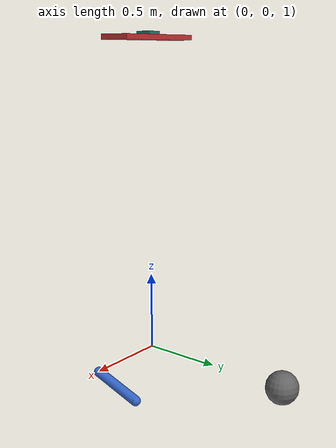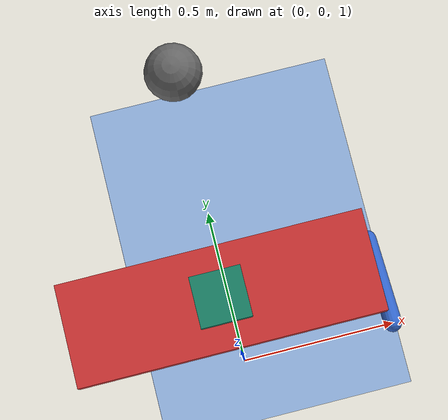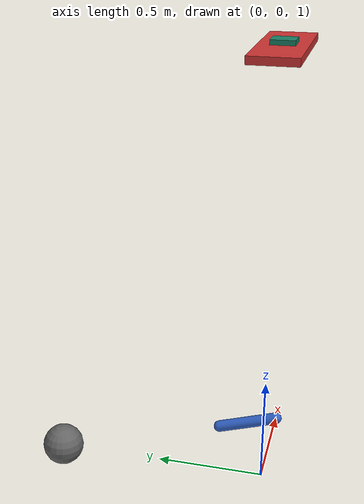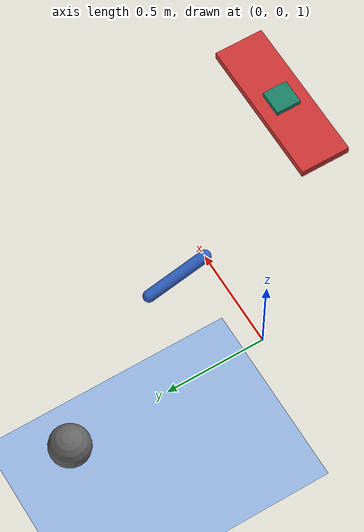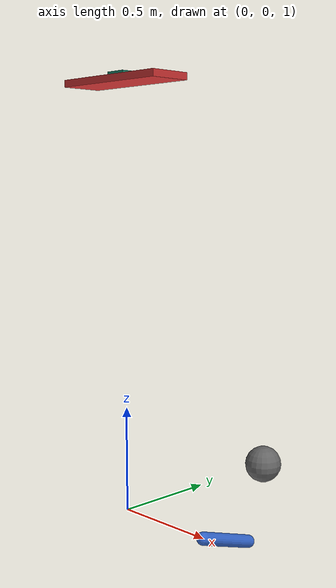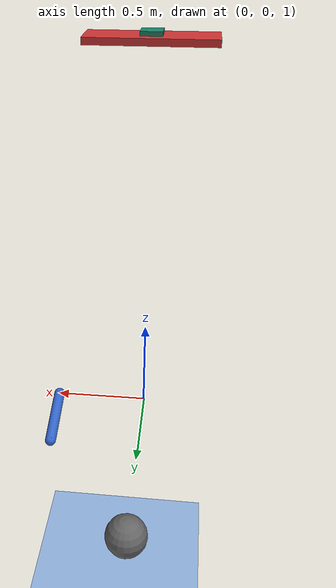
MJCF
<mujoco model="learn">
  <option gravity="0 0 -9.81"/>

  <asset>
    <texture name="grid" type="2d" builtin="checker"
             rgb1="0.9 0.95 1.0" rgb2="0.25 0.45 0.75"
             width="512" height="512"/>
    <material name="grid" texture="grid" texrepeat="12 12" reflectance="0.15"/>
  </asset>

  <worldbody>
    <geom name="floor" type="plane" size="2 2 0.1" material="grid"/>

    <light pos="0 0 3" dir="0 0 -1"/>

    <body name="falling_box" pos="0 0 3">
      <!-- if no freejoint, then it stays frozen where spawned-->
      <freejoint/>
      <geom type="box" size="0.3 0.1 0.016" rgba="0.8 0.2 0.2 1" pos="0 0 0" mass="1"/>
      <geom type="box" size="0.05 0.05 0.010" rgba="0.1 0.5 0.4 1" pos="0 0 0.026" mass="0.1"/>
    </body>

    <body name="ball" pos="0 1 1">
      <freejoint/>
      <geom type="sphere" size="0.1" rgba="0.4 0.4 0.4 1" pos="0 0 0" mass="0.1"/>
    </body>

    <body name="pendulum" pos="0.5 0 1">
      <joint name="pivot" type="hinge" axis="1 0 0"/>
      <geom type="capsule" fromto="0 0 0  0 0.3 -0.1" size="0.03" rgba="0.2 0.4 0.8 1"/>
    </body>
  </worldbody>

</mujoco>
